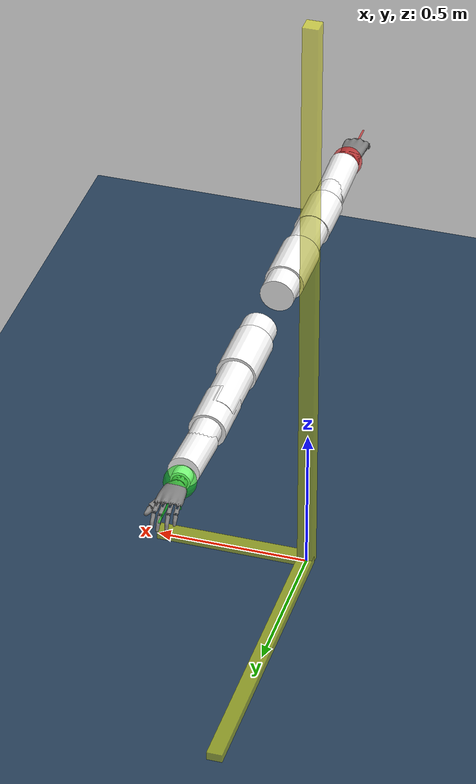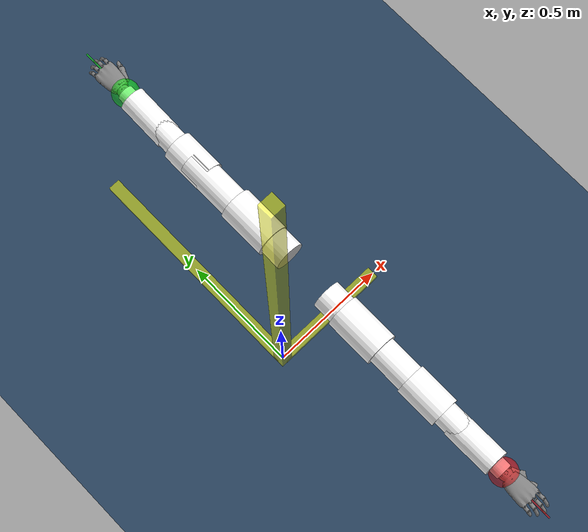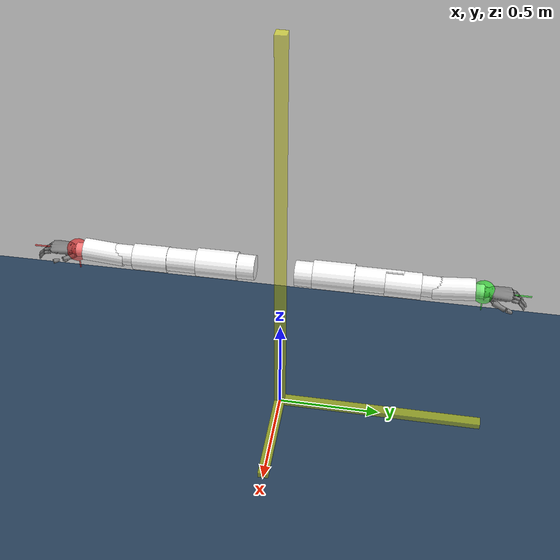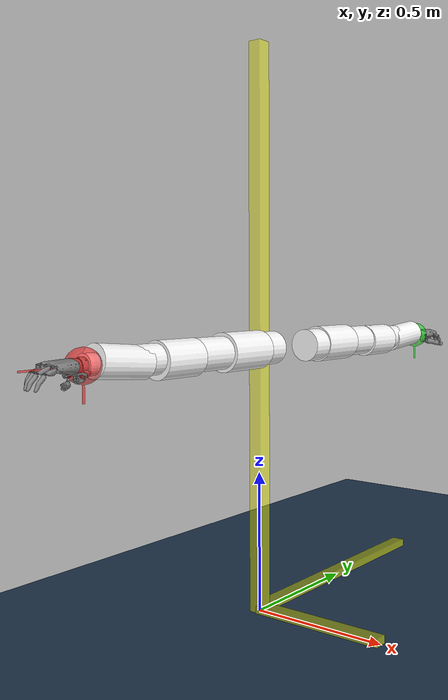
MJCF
<?xml version='1.0' encoding='utf-8'?>
<mujoco model="genie">
  <compiler angle="radian" />

  <asset>
    <mesh name="base_link" content_type="model/obj" file="base_link.obj" />
    <mesh name="if_proximal_link" content_type="model/obj" file="if_proximal_link.obj" />
    <mesh name="if_distal_link" content_type="model/obj" file="if_distal_link.obj" />
    <mesh name="mf_proximal_link" content_type="model/obj" file="mf_proximal_link.obj" />
    <mesh name="mf_distal_link" content_type="model/obj" file="mf_distal_link.obj" />
    <mesh name="rf_proximal_link" content_type="model/obj" file="rf_proximal_link.obj" />
    <mesh name="rf_distal_link" content_type="model/obj" file="rf_distal_link.obj" />
    <mesh name="lf_proximal_link" content_type="model/obj" file="lf_proximal_link.obj" />
    <mesh name="lf_distal_link" content_type="model/obj" file="lf_distal_link.obj" />
    <mesh name="th_root_link" content_type="model/obj" file="th_root_link.obj" />
    <mesh name="th_proximal_link" content_type="model/obj" file="th_proximal_link.obj" />
    <mesh name="th_distal_link" content_type="model/obj" file="th_distal_link.obj" />
  </asset>

  <worldbody>
  <site name="world_site_x_axis" pos="0.25 0 0" size="0.25 0.025 0.025"
      rgba="1 1 0 0.5" type="box" />
    <site name="world_site_y_axis" pos="0 0.5 0" size="0.025 0.5 0.025"
      rgba="1 1 0 0.5" type="box" />
    <site name="world_site_z_axis" pos="0 0 1" size="0.025 0.025 1"
      rgba="1 1 0 0.5" type="box" />
    <body name="body_link1" pos="0 0 0.6485">
      <inertial pos="0.0338352 -0.00248044 0.000838431" quat="0.70654 0.707661 -0.00251284 0.00337775" mass="3.26275" diaginertia="0.0128303 0.011172 0.00610409" />
      <joint name="idx01_body_joint1" pos="0 0 0" axis="0 0 1" type="slide" range="0 0.55" actuatorfrcrange="-100 100" />
      <body name="body_link2" pos="0.131 0 0" quat="0.707107 -0.707107 0 0">
        <inertial pos="0.202202 0.00892157 0.002094" quat="-0.309612 0.669057 -0.144642 0.659986" mass="8.28389" diaginertia="0.0566071 0.0514324 0.0241845" />
        <joint name="idx02_body_joint2" pos="0 0 0" axis="0 0 1" range="0 1.5708" actuatorfrcrange="-100 100" />
        <body name="head_link1" pos="0 -0.441 0" quat="0.707107 0.707107 0 0">
          <inertial pos="0.0446068 0.00241753 0.0528374" quat="0.38837 0.389207 -0.612687 0.567716" mass="0.414343" diaginertia="0.000173888 0.000155933 0.000117565" />
          <joint name="idx11_head_joint1" pos="0 0 0" axis="0 0 1" range="-1.5708 1.5708" actuatorfrcrange="-50 50" />
          <body name="head_link2" pos="0.050238 0 0.060065" quat="0.707107 -0.707107 0 0">
            <inertial pos="0.0257009 0.0316254 -3.7739e-05" quat="0.661342 0.654801 0.258526 0.258893" mass="0.707064" diaginertia="0.00237749 0.00185 0.00168017" />
            <joint name="idx12_head_joint2" pos="0 0 0" axis="0 0 1" range="-0.349066 0.523599" actuatorfrcrange="-50 50" />
          </body>
        </body>
        <body name="arm_l_link1" pos="0 -0.305 0.2109">
          <inertial pos="-0.0012655 -0.00043778 -0.018388" quat="0.999377 0.00141724 -0.00704567 0.0345516" mass="0.4936" diaginertia="0.00075451 0.000657089 0.00031839" />
          <joint name="idx21_arm_l_joint1" pos="0 0 0" axis="0 0 1" range="-3.14 3.14" actuatorfrcrange="-60 60" />
          <geom size="0.0557927 0.0832103" pos="0.00268144 0.000613378 -0.0407112" quat="0.809017 0 0 -0.587785" type="cylinder" rgba="1 1 1 1" />
          <body name="arm_l_link2" quat="0.5 -0.5 -0.5 0.5">
            <inertial pos="5.3037e-05 -0.078258 0.0047084" quat="0.4655 0.507294 -0.534234 0.490467" mass="0.46245" diaginertia="0.000728062 0.000656998 0.00043243" />
            <joint name="idx22_arm_l_joint2" pos="0 0 0" axis="0 0 1" range="-2.09 1.48" actuatorfrcrange="-60 60" />
            <geom size="0.0630242 0.0904296" pos="0 -0.0440621 0.000976562" quat="0.707107 0.707107 0 0" type="cylinder" rgba="1 1 1 1" />
            <body name="arm_l_link3" pos="0 -0.305 0" quat="-0.5 -0.5 -0.5 0.5">
              <inertial pos="-0.0012032 0.0008714 -0.055265" quat="0.716744 0.00286354 -0.0130205 0.697209" mass="0.50026" diaginertia="0.00142764 0.00130171 0.000335118" />
              <joint name="idx23_arm_l_joint3" pos="0 0 0" axis="0 0 1" range="-3.1 3.1" actuatorfrcrange="-60 60" />
              <geom size="0.0542326 0.110349" pos="-0.00274505 0.000636008 -0.0722394" quat="0 0.309017 0.951057 0" type="cylinder" rgba="1 1 1 1" />
              <body name="arm_l_link4" quat="0 0 -0.707107 0.707107">
                <inertial pos="3.7035e-05 -0.06248 0.0025377" quat="0.497379 0.504086 -0.500364 0.498144" mass="0.27473" diaginertia="0.00031239 0.000292842 0.000188518" />
                <joint name="idx24_arm_l_joint4" pos="0 0 0" axis="0 0 1" range="-1.48 1.48" actuatorfrcrange="-60 60" />
                <geom size="0.0578917 0.0774777" pos="0 -0.038179 -0.00439453" quat="0.707107 0.707107 0 0" type="cylinder" rgba="1 1 1 1" />
                <body name="arm_l_link5" pos="0 -0.1975 0" quat="0 0 0.707107 -0.707107">
                  <inertial pos="-7.9404e-07 -0.00023094 -0.024143" quat="0.706596 -0.0269081 0.0270445 0.706588" mass="0.25139" diaginertia="0.000289006 0.00023516 0.000129764" />
                  <joint name="idx25_arm_l_joint5" pos="0 0 0" axis="0 0 1" range="-3.1 3.1" actuatorfrcrange="-30 30" />
                  <geom size="0.0456146 0.067262" pos="0.00013162 -5.83555e-05 -0.0333058" quat="0.951057 0 0 -0.309017" type="cylinder" rgba="1 1 1 1" />
                  <body name="arm_l_link6" quat="0.707107 -0.707107 0 0">
                    <inertial pos="1.769e-06 -0.086692 0.0025571" quat="0.47333 0.529128 -0.524871 0.469567" mass="0.26634" diaginertia="0.00032677 0.000314339 0.000142371" />
                    <joint name="idx26_arm_l_joint6" pos="0 0 0" axis="0 0 1" range="-1.74 1.74" actuatorfrcrange="-30 30" />
                    <geom size="0.0485074 0.09083" pos="0.000254946 -0.0554777 -0.00193943" quat="0.522838 -0.476211 -0.477658 -0.521255" type="cylinder" rgba="1 1 1 1" />
                    <body name="arm_l_end_link" pos="0 -0.1805 0" quat="0.707107 0.707107 0 0">
                      <inertial pos="-0.0223331 0.00108176 -0.00913226" quat="0.0326108 0.79204 -0.00936036 0.609525" mass="0.113402" diaginertia="0.000137819 0.000117304 3.86421e-05" />
                      <joint name="idx27_arm_l_joint7" pos="0 0 0" axis="0 0 1" range="-3.1 3.1" actuatorfrcrange="-30 30" />
                      <geom size="0.0308 0.023" pos="-4.55295e-05 -0.00230047 -0.0225" quat="0 0 1 0" type="cylinder" rgba="1 1 1 1" />
                      <geom pos="0 0 0" quat="-0.5 -0.5 -0.5 0.5" type="mesh" mesh="base_link" />
                      <body name="hand_l_if_proximal_link" pos="0.030843 -0.0024802 0.11269" quat="-0.501222 -0.455658 -0.540717 0.498775">
                        <inertial pos="-0.0160192 -9.85142e-05 -0.00754047" quat="6.36225e-05 0.608518 4.02912e-05 0.79354" mass="0.00155055" diaginertia="1.69649e-07 1.54822e-07 6.13745e-08" />
                        <joint name="hand_l_index_joint1" pos="0 0 0" axis="0 1 0" />
                        <geom type="mesh" mesh="if_proximal_link" />
                        <body name="hand_l_if_distal_link" pos="-0.034061 0 -0.011405" quat="1 1.289e-05 -6.57003e-10 -5.097e-05">
                          <inertial pos="-0.0140538 -9.47216e-05 -0.0187678" quat="0.944307 5.9785e-06 0.329065 -2.08334e-06" mass="0.00416344" diaginertia="5.82315e-07 5.74333e-07 6.77387e-08" />
                          <joint name="hand_l_index_joint2" pos="0 0 0" axis="0 1 0" />
                          <geom type="mesh" mesh="if_distal_link" />
                        </body>
                      </body>
                      <body name="hand_l_mf_proximal_link" pos="0.010647 -0.0067882 0.11597" quat="-0.496678 -0.496678 -0.5033 0.5033">
                        <inertial pos="0.0383189 -0.000510921 -0.0158668" quat="0.154673 0.637313 0.100585 0.748191" mass="0.10211" diaginertia="0.00032431 0.000264216 9.18208e-05" />
                        <joint name="hand_l_middle_joint1" pos="0 0 0" axis="0 1 0" />
                        <geom type="mesh" mesh="mf_proximal_link" />
                        <body name="hand_l_mf_distal_link" pos="-0.038293 0 -0.014673">
                          <inertial pos="-0.0142677 9.50657e-05 -0.0186056" quat="0.942408 4.79347e-06 0.334466 -1.70123e-06" mass="0.00416341" diaginertia="5.8231e-07 5.74328e-07 6.77385e-08" />
                          <joint name="hand_l_middle_joint2" pos="0 0 0" axis="0 1 0" />
                          <geom type="mesh" mesh="mf_distal_link" />
                        </body>
                      </body>
                      <body name="hand_l_rf_proximal_link" pos="-0.0091941 -0.0060382 0.11324" quat="-0.513948 -0.513948 -0.485651 0.485651">
                        <inertial pos="-0.0157473 -9.85177e-05 -0.00809297" quat="6.79741e-05 0.594627 3.87499e-05 0.804002" mass="0.00155058" diaginertia="1.69652e-07 1.54825e-07 6.13748e-08" />
                        <joint name="hand_l_ring_joint1" pos="0 0 0" axis="0 1 0" />
                        <geom type="mesh" mesh="rf_proximal_link" />
                        <body name="hand_l_rf_distal_link" pos="-0.033643 0 -0.012583" quat="1 1.4655e-05 -7.39931e-10 -5.049e-05">
                          <inertial pos="-0.0127271 -9.38053e-05 -0.0196846" quat="0.955067 3.19757e-05 0.296389 0.000120019" mass="0.00416255" diaginertia="5.82042e-07 5.74059e-07 6.77466e-08" />
                          <joint name="hand_l_ring_joint2" pos="0 0 0" axis="0 1 0" />
                          <geom type="mesh" mesh="rf_distal_link" />
                        </body>
                      </body>
                      <body name="hand_l_lf_proximal_link" pos="-0.02946 -0.0034771 0.10947" quat="-0.507485 -0.548721 -0.445987 0.492401">
                        <inertial pos="-0.014089 0.000100219 -0.0073978" quat="0 0.590053 0 0.807364" mass="0.00136673" diaginertia="1.27487e-07 1.12813e-07 5.56915e-08" />
                        <joint name="hand_l_little_joint1" pos="0 0 0" axis="0 1 0" />
                        <geom type="mesh" mesh="lf_proximal_link" />
                        <body name="hand_l_lf_distal_link" pos="-0.029737 5.0315e-05 -0.011632" quat="1 1.05275e-05 0 0">
                          <inertial pos="-0.0083485 -0.000122866 -0.0140829" quat="0.960078 -0.00362187 0.279631 0.00657346" mass="0.00263003" diaginertia="1.59093e-07 1.53222e-07 3.74446e-08" />
                          <joint name="hand_l_little_joint2" pos="0 0 0" axis="0 1 0" />
                          <geom type="mesh" mesh="lf_distal_link" />
                        </body>
                      </body>
                      <body name="hand_l_th_root_link" pos="0.020016 0.0232 0.04608" quat="-0.548573 -0.438865 -0.44617 0.554434">
                        <inertial pos="0.00191344 0.00533361 -0.00206873" quat="0.710156 0.619804 0.190258 0.274453" mass="0.00219895" diaginertia="2.21369e-07 1.74607e-07 9.72681e-08" />
                        <joint name="hand_l_thumb_joint0" pos="0 0 0" axis="-1 0 0" range="-0.035 1.605" />
                        <geom type="mesh" mesh="th_root_link" />
                        <body name="hand_l_th_proximal_link" pos="-0.0067545 0.02098 -0.0027" quat="0.999979 0 0 0.00646545">
                          <inertial pos="-0.0180334 0.00795835 -0.000164754" quat="0.107106 0.698915 -0.107327 0.698947" mass="0.00666243" diaginertia="2.21298e-06 2.04055e-06 3.25226e-07" />
                          <joint name="hand_l_thumb_joint1" pos="0 0 0" axis="0 0 -1" />
                          <geom type="mesh" mesh="th_proximal_link" />
                          <body name="hand_l_th_distal_link" pos="-0.050881 0.013011 -0.0020153">
                            <inertial pos="-0.00825362 0.00781058 0.00189926" quat="0.611565 0.611505 0.354992 0.355009" mass="0.00503403" diaginertia="3.0114e-07 2.35219e-07 1.66173e-07" />
                            <joint name="hand_l_thumb_joint2" pos="0 0 0" axis="0 0 -1" />
                            <geom type="mesh" mesh="th_distal_link" />
                          </body>
                        </body>
                      </body>
                    <site name="left_eef_site" pos="0 0 0" size="0.05" rgba="0 1 0 0.5" type="sphere" /><site name="left_eef_site_xaxis" pos="0.025 0 0" size="0.025 0.0025 0.0025" rgba="0 1 0 0.5" type="box" /><site name="left_eef_site_yaxis" pos="0 0.05 0" size="0.0025 0.05 0.0025" rgba="0 1 0 0.5" type="box" /><site name="left_eef_site_zaxis" pos="0 0 0.1" size="0.0025 0.0025 0.1" rgba="0 1 0 0.5" type="box" /></body>
                  </body>
                </body>
              </body>
            </body>
          </body>
        </body>
        <body name="arm_r_link1" pos="0 -0.305 -0.213" quat="0 0 -1 0">
          <inertial pos="0.0012679 -0.0001581 -0.018109" quat="0.999913 0.00172272 0.00210705 -0.0129351" mass="0.4936" diaginertia="0.00075403 0.000660442 0.000315518" />
          <joint name="idx61_arm_r_joint1" pos="0 0 0" axis="0 0 1" range="-3.14 3.14" actuatorfrcrange="-60 60" />
          <geom size="0.054839 0.0832136" pos="0.00018724 -0.00200487 -0.0407119" quat="0 -0.809017 -0.587785 0" type="cylinder" rgba="1 1 1 1" />
          <body name="arm_r_link2" quat="0.5 -0.5 0.5 -0.5">
            <inertial pos="-0.00044207 -0.082298 0.00019486" quat="0.476302 0.549206 -0.503867 0.466506" mass="0.41662" diaginertia="0.00058032 0.00054597 0.00039261" />
            <joint name="idx62_arm_r_joint2" pos="0 0 0" axis="0 0 1" range="-1.48 2.09" actuatorfrcrange="-60 60" />
            <geom size="0.0630242 0.0904296" pos="0 -0.0440621 0.000976562" quat="0.707107 0.707107 0 0" type="cylinder" rgba="1 1 1 1" />
            <body name="arm_r_link3" pos="0 -0.305 0" quat="0.5 0.5 -0.5 0.5">
              <inertial pos="0.0010558 4.4416e-05 -0.056128" quat="0.702309 0.0145002 -0.00484504 0.711708" mass="0.49413" diaginertia="0.00142079 0.00134067 0.000375087" />
              <joint name="idx63_arm_r_joint3" pos="0 0 0" axis="0 0 1" range="-3.1 3.1" actuatorfrcrange="-60 60" />
              <geom size="0.0521616 0.110307" pos="0.000655993 -2.2629e-05 -0.072193" type="cylinder" rgba="1 1 1 1" />
              <body name="arm_r_link4" quat="0 0 -0.707107 0.707107">
                <inertial pos="2.4212e-05 -0.06248 0.002536" quat="0.49733 0.504026 -0.500463 0.498154" mass="0.27473" diaginertia="0.00031239 0.000292832 0.000188508" />
                <joint name="idx64_arm_r_joint4" pos="0 0 0" axis="0 0 1" range="-1.48 1.48" actuatorfrcrange="-60 60" />
                <geom size="0.0578917 0.0774777" pos="0 -0.038179 -0.00439453" quat="0.707107 0.707107 0 0" type="cylinder" rgba="1 1 1 1" />
                <body name="arm_r_link5" pos="0 -0.1975 0" quat="0 0 0.707107 -0.707107">
                  <inertial pos="2.6223e-06 -0.00023041 -0.024141" quat="0.706561 -0.0269128 0.0270485 0.706623" mass="0.25139" diaginertia="0.000288996 0.00023516 0.000129754" />
                  <joint name="idx65_arm_r_joint5" pos="0 0 0" axis="0 0 1" range="-3.1 3.1" actuatorfrcrange="-30 30" />
                  <geom size="0.0456203 0.067119" pos="-0.000222555 -4.22748e-05 -0.0334495" type="cylinder" rgba="1 1 1 1" />
                  <body name="arm_r_link6" quat="0.707107 -0.707107 0 0">
                    <inertial pos="5.0382e-06 -0.086696 0.002556" quat="0.473321 0.529129 -0.524875 0.46957" mass="0.26634" diaginertia="0.00032676 0.000314339 0.000142371" />
                    <joint name="idx66_arm_r_joint6" pos="0 0 0" axis="0 0 1" range="-1.74 1.74" actuatorfrcrange="-30 30" />
                    <geom size="0.0485715 0.0913624" pos="-1.77825e-05 -0.055076 -0.00174472" quat="0.521813 -0.477274 -0.478144 -0.520863" type="cylinder" rgba="1 1 1 1" />
                    <body name="arm_r_end_link" pos="0 -0.1805 0" quat="0.707107 0.707107 0 0">
                      <inertial pos="-0.0154537 -0.00117053 -0.0115051" quat="-0.0411086 0.79414 0.0177689 0.606082" mass="0.098175" diaginertia="8.57858e-05 7.11584e-05 3.0341e-05" />
                      <joint name="idx67_arm_r_joint7" pos="0 0 0" axis="0 0 1" range="-3.1 3.1" actuatorfrcrange="-30 30" />
                      <geom size="0.0308 0.023" pos="-4.55295e-05 -0.00230047 -0.0225" quat="0 0 1 0" type="cylinder" rgba="1 1 1 1" />
                      <geom pos="0 0 0" quat="0.5 0.5 0.5 -0.5" type="mesh" mesh="base_link" />
                      <body name="hand_r_if_proximal_link" pos="-0.030673 -0.0027221 0.11269" quat="0.498775 0.540717 0.455658 -0.501222">
                        <inertial pos="-0.0160205 9.8103e-05 -0.0075405" quat="4.12323e-05 0.608528 6.82842e-05 0.793533" mass="0.00155087" diaginertia="1.6968e-07 1.54849e-07 6.138e-08" />
                        <joint name="hand_r_index_joint1" pos="0 0 0" axis="0 1 0" />
                        <geom type="mesh" mesh="if_proximal_link" />
                        <body name="hand_r_if_distal_link" pos="-0.034061 0 -0.011405" quat="1 -1.289e-05 -6.57003e-10 5.097e-05">
                          <inertial pos="-0.0140542 9.48701e-05 -0.0187681" quat="0.944312 -3.95537e-05 0.329052 -0.000122995" mass="0.00416402" diaginertia="5.82485e-07 5.74504e-07 6.77443e-08" />
                          <joint name="hand_r_index_joint2" pos="0 0 0" axis="0 1 0" />
                          <geom type="mesh" mesh="if_distal_link" />
                        </body>
                      </body>
                      <body name="hand_r_mf_proximal_link" pos="-0.010478 -0.0070301 0.11597" quat="0.5033 0.5033 0.496678 -0.496678">
                        <inertial pos="-0.0178813 -9.99812e-05 -0.00978209" quat="7.29098e-05 0.577723 4.29064e-05 0.816233" mass="0.00189595" diaginertia="2.46887e-07 2.34143e-07 7.72053e-08" />
                        <joint name="hand_r_middle_joint1" pos="0 0 0" axis="0 1 0" />
                        <geom type="mesh" mesh="mf_proximal_link" />
                        <body name="hand_r_mf_distal_link" pos="-0.038293 0 -0.014673">
                          <inertial pos="-0.0142681 -9.48989e-05 -0.0186058" quat="0.942412 -4.01794e-05 0.334454 -0.000127874" mass="0.00416397" diaginertia="5.82467e-07 5.74486e-07 6.77441e-08" />
                          <joint name="hand_r_middle_joint2" pos="0 0 0" axis="0 1 0" />
                          <geom type="mesh" mesh="mf_distal_link" />
                        </body>
                      </body>
                      <body name="hand_r_rf_proximal_link" pos="0.0093636 -0.0062802 0.11324" quat="0.485651 0.485651 0.513948 -0.513948">
                        <inertial pos="-0.0157485 9.81656e-05 -0.00809309" quat="4.04554e-05 0.594638 6.95411e-05 0.803994" mass="0.00155087" diaginertia="1.6968e-07 1.54849e-07 6.13806e-08" />
                        <joint name="hand_r_ring_joint1" pos="0 0 0" axis="0 1 0" />
                        <geom type="mesh" mesh="rf_proximal_link" />
                        <body name="hand_r_rf_distal_link" pos="-0.033643 0 -0.012583" quat="1 -1.4655e-05 -7.39931e-10 5.049e-05">
                          <inertial pos="-0.0127273 9.43186e-05 -0.019685" quat="0.955066 -9.57593e-06 0.296392 2.97176e-06" mass="0.00416284" diaginertia="5.82045e-07 5.7406e-07 6.77476e-08" />
                          <joint name="hand_r_ring_joint2" pos="0 0 0" axis="0 1 0" />
                          <geom type="mesh" mesh="rf_distal_link" />
                        </body>
                      </body>
                      <body name="hand_r_lf_proximal_link" pos="0.029629 -0.003719 0.10947" quat="0.492401 0.445987 0.548721 -0.507485">
                        <inertial pos="-0.014089 -9.99368e-05 -0.00739805" quat="0 0.590054 0 0.807364" mass="0.00136675" diaginertia="1.27483e-07 1.12814e-07 5.56931e-08" />
                        <joint name="hand_r_little_joint1" pos="0 0 0" axis="0 1 0" />
                        <geom type="mesh" mesh="lf_proximal_link" />
                        <body name="hand_r_lf_distal_link" pos="-0.029737 -5.0315e-05 -0.011632" quat="1 -1.05275e-05 0 0">
                          <inertial pos="-0.00834877 0.000122937 -0.0140838" quat="0.960073 0.00366151 0.279652 -0.00641542" mass="0.00263004" diaginertia="1.59094e-07 1.53222e-07 3.74422e-08" />
                          <joint name="hand_r_little_joint2" pos="0 0 0" axis="0 1 0" />
                          <geom type="mesh" mesh="lf_distal_link" />
                        </body>
                      </body>
                      <body name="hand_r_th_root_link" pos="-0.019846 0.022958 0.046082" quat="0.555074 0.445374 0.439652 -0.547942">
                        <inertial pos="0.00191345 -0.00532764 -0.00208403" quat="0.618783 0.711045 -0.27418 -0.190652" mass="0.00219895" diaginertia="2.21368e-07 1.74606e-07 9.72678e-08" />
                        <joint name="hand_r_thumb_joint0" pos="0 0 0" axis="1 0 0" range="-0.035 1.605" />
                        <geom type="mesh" mesh="th_root_link" />
                        <body name="hand_r_th_proximal_link" pos="-0.0067545 -0.020973 -0.0027602" quat="-9.21517e-06 0.0064463 0.999978 0.00144642">
                          <inertial pos="0.0173186 -0.0080489 -0.00337072" quat="0.152708 0.693916 -0.0697608 0.70021" mass="0.00415628" diaginertia="1.17599e-06 1.09578e-06 1.77332e-07" />
                          <joint name="hand_r_thumb_joint1" pos="0 0 0" axis="0 0 -1" />
                          <geom type="mesh" mesh="th_proximal_link" />
                          <body name="hand_r_th_distal_link" pos="0.050881 -0.013011 0.0020153">
                            <inertial pos="0.00825371 -0.00781063 -0.00189928" quat="0.611561 0.611494 0.355018 0.355008" mass="0.00503423" diaginertia="3.0116e-07 2.35242e-07 1.6618e-07" />
                            <joint name="hand_r_thumb_joint2" pos="0 0 0" axis="0 0 -1" />
                            <geom type="mesh" mesh="th_distal_link" />
                          </body>
                        </body>
                      </body>
                    <site name="right_eef_site" pos="0 0 0" size="0.05" rgba="1 0 0 0.5" type="sphere" /><site name="right_eef_site_xaxis" pos="0.025 0 0" size="0.025 0.0025 0.0025" rgba="1 0 0 0.5" type="box" /><site name="right_eef_site_yaxis" pos="0 0.05 0" size="0.0025 0.05 0.0025" rgba="1 0 0 0.5" type="box" /><site name="right_eef_site_zaxis" pos="0 0 0.1" size="0.0025 0.0025 0.1" rgba="1 0 0 0.5" type="box" /></body>
                  </body>
                </body>
              </body>
            </body>
          </body>
        </body>
      </body>
    </body>
  </worldbody>
  <!-- setup scene -->
  <statistic center="1.0 0.7 1.0" extent="0.8" />
  <visual>
    <headlight diffuse="0.6 0.6 0.6" ambient="0.1 0.1 0.1" specular="0.9 0.9 0.9" />
    <rgba haze="0.15 0.25 0.35 1" />
    <global azimuth="-140" elevation="-20" />
  </visual>
  <asset>
    <texture type="skybox" builtin="flat" rgb1="0 0 0" rgb2="0 0 0" width="512" height="3072" />
    <texture type="2d" name="groundplane" builtin="checker" mark="edge" rgb1="0.2 0.3 0.4"
      rgb2="0.1 0.2 0.3" markrgb="0.8 0.8 0.8" width="300" height="300" />
    <material name="groundplane" texture="groundplane" texuniform="true" texrepeat="5 5"
      reflectance="0.2" />
  </asset>
  <worldbody>
    <light pos="1 0 3.5" dir="0 0 -1" directional="true" />
    <geom name="floor" size="0 0 0.05" type="plane" material="groundplane" pos="0 0 0" />
  </worldbody>
</mujoco>
